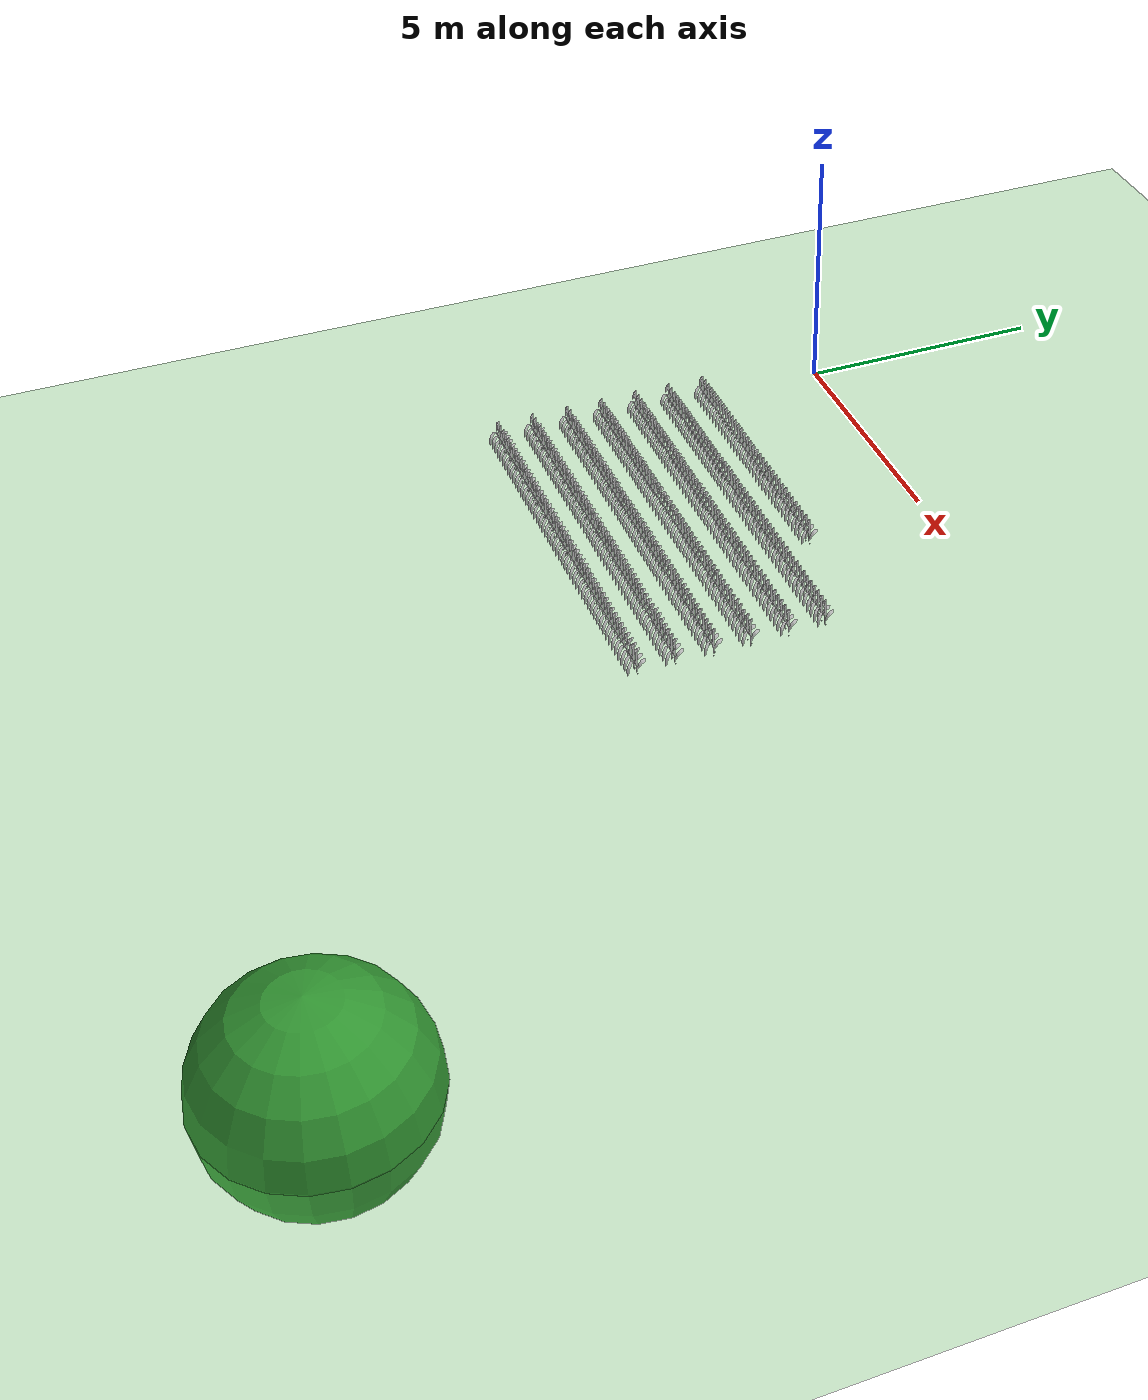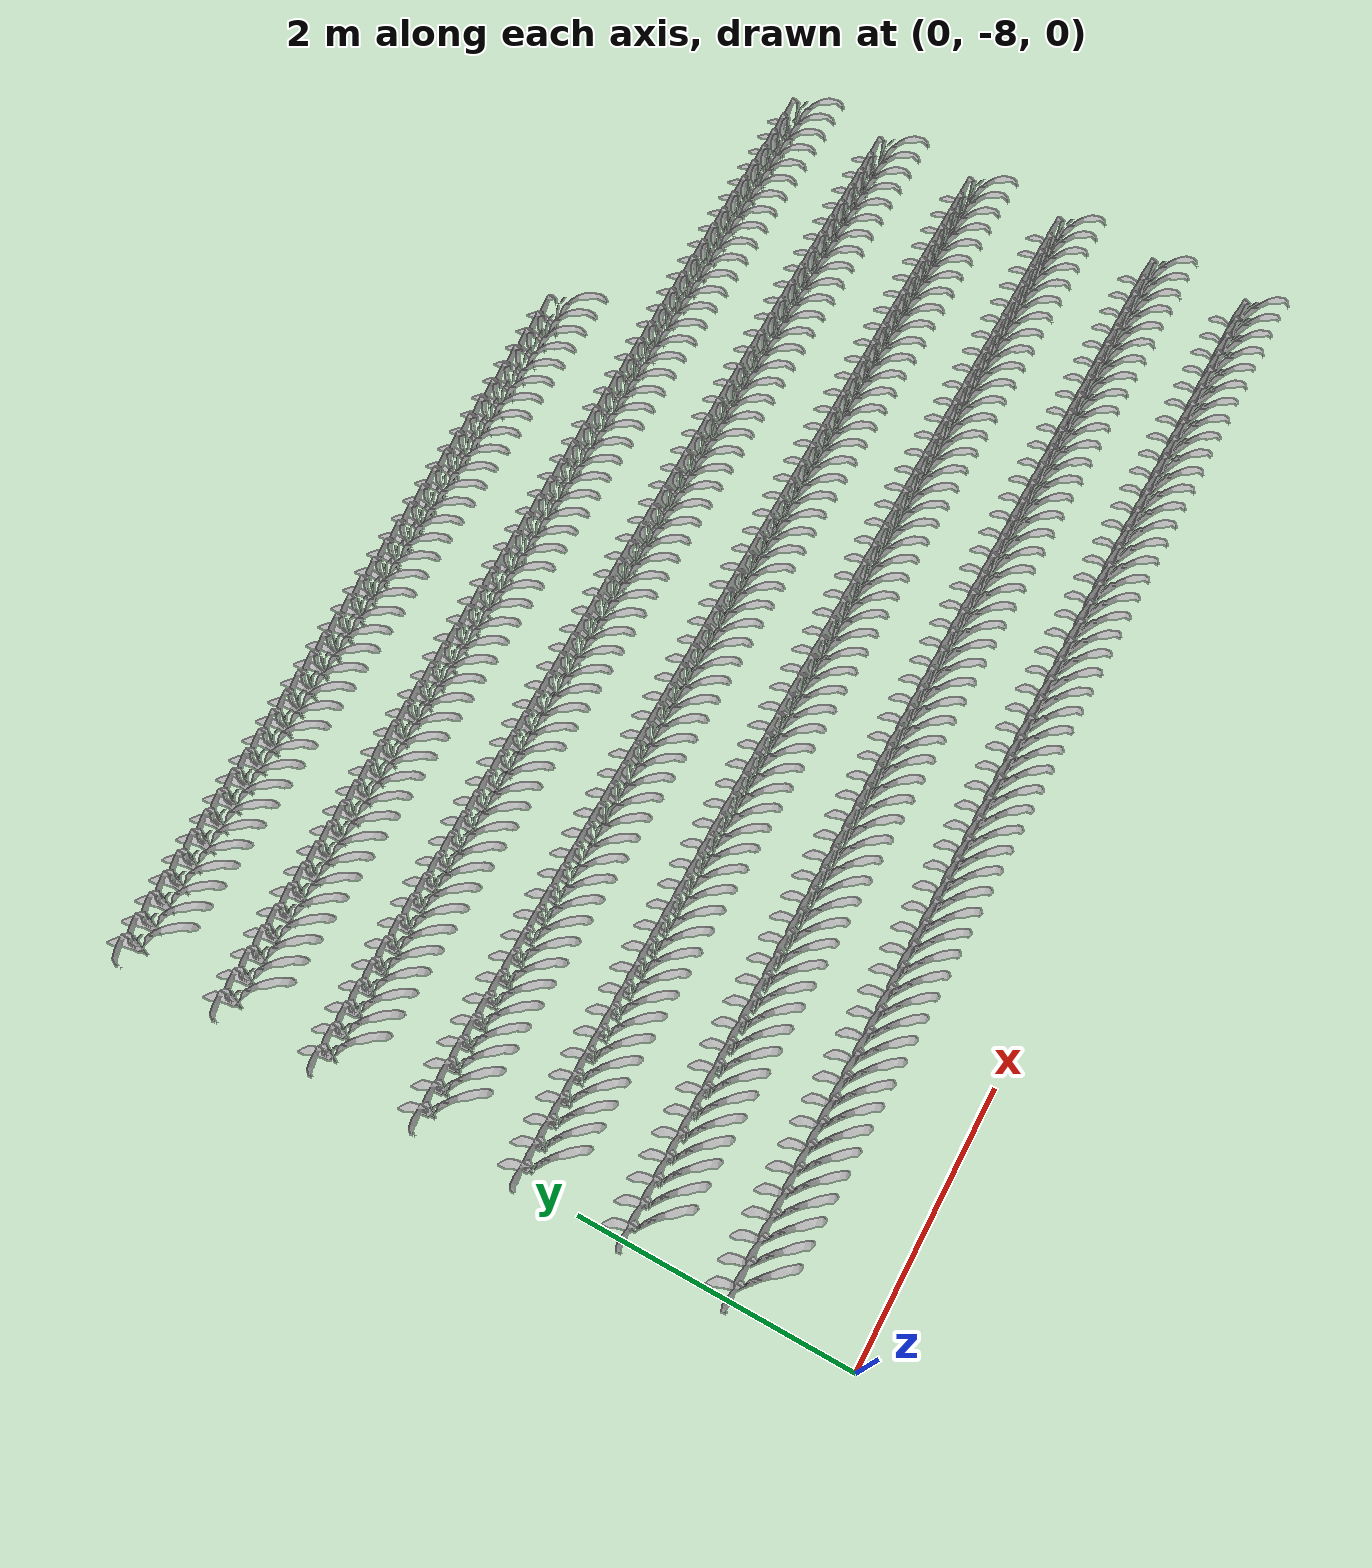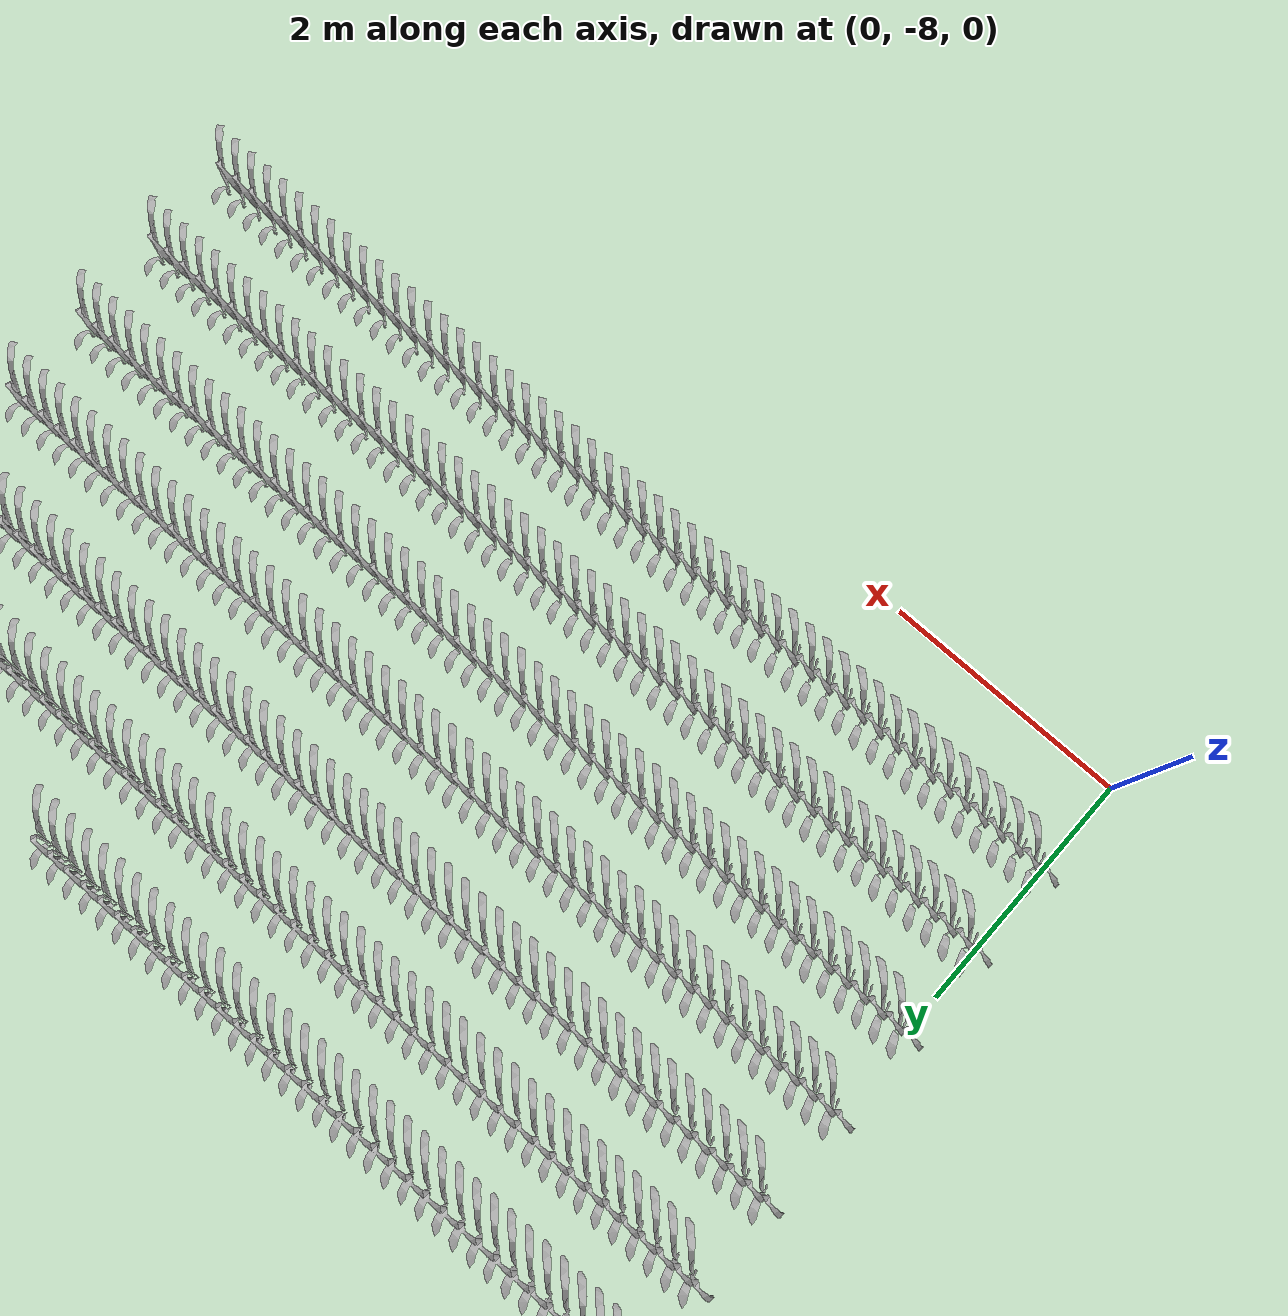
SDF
<sdf version="1.9">
 <world name="farm_world">
  <model name="ground_plane">
   <static>true</static>
   <link name="link">
    <collision name="collision">
     <geometry><plane><normal>0 0 1</normal><size>100 100</size></plane></geometry>
    </collision>
    <visual name="visual">
     <geometry><plane><normal>0 0 1</normal><size>100 100</size></plane></geometry>
     <material>
      <ambient>0.2 0.6 0.2 1</ambient>
      <diffuse>0.3 0.7 0.3 1</diffuse>
      <specular>0.1 0.1 0.1 1</specular>
     </material>
    </visual>
   </link>
  </model>
  <include><uri>model://maize_01</uri><name>maize_50</name><pose>0.08 -7.12 0 0 0 0</pose></include>
  <include><uri>model://maize_01</uri><name>maize_51</name><pose>0.24 -7.12 0 0 0 0</pose></include>
  <include><uri>model://maize_01</uri><name>maize_52</name><pose>0.40 -7.12 0 0 0 0</pose></include>
  <include><uri>model://maize_01</uri><name>maize_53</name><pose>0.56 -7.12 0 0 0 0</pose></include>
  <include><uri>model://maize_01</uri><name>maize_54</name><pose>0.72 -7.12 0 0 0 0</pose></include>
  <include><uri>model://maize_01</uri><name>maize_55</name><pose>0.88 -7.12 0 0 0 0</pose></include>
  <include><uri>model://maize_01</uri><name>maize_56</name><pose>1.04 -7.12 0 0 0 0</pose></include>
  <include><uri>model://maize_01</uri><name>maize_57</name><pose>1.20 -7.12 0 0 0 0</pose></include>
  <include><uri>model://maize_01</uri><name>maize_58</name><pose>1.36 -7.12 0 0 0 0</pose></include>
  <include><uri>model://maize_01</uri><name>maize_59</name><pose>1.52 -7.12 0 0 0 0</pose></include>
  <include><uri>model://maize_01</uri><name>maize_60</name><pose>1.68 -7.12 0 0 0 0</pose></include>
  <include><uri>model://maize_01</uri><name>maize_61</name><pose>1.84 -7.12 0 0 0 0</pose></include>
  <include><uri>model://maize_01</uri><name>maize_62</name><pose>2.00 -7.12 0 0 0 0</pose></include>
  <include><uri>model://maize_01</uri><name>maize_63</name><pose>2.16 -7.12 0 0 0 0</pose></include>
  <include><uri>model://maize_01</uri><name>maize_64</name><pose>2.32 -7.12 0 0 0 0</pose></include>
  <include><uri>model://maize_01</uri><name>maize_65</name><pose>2.48 -7.12 0 0 0 0</pose></include>
  <include><uri>model://maize_01</uri><name>maize_66</name><pose>2.64 -7.12 0 0 0 0</pose></include>
  <include><uri>model://maize_01</uri><name>maize_67</name><pose>2.80 -7.12 0 0 0 0</pose></include>
  <include><uri>model://maize_01</uri><name>maize_68</name><pose>2.96 -7.12 0 0 0 0</pose></include>
  <include><uri>model://maize_01</uri><name>maize_69</name><pose>3.12 -7.12 0 0 0 0</pose></include>
  <include><uri>model://maize_01</uri><name>maize_70</name><pose>3.28 -7.12 0 0 0 0</pose></include>
  <include><uri>model://maize_01</uri><name>maize_71</name><pose>3.44 -7.12 0 0 0 0</pose></include>
  <include><uri>model://maize_01</uri><name>maize_72</name><pose>3.60 -7.12 0 0 0 0</pose></include>
  <include><uri>model://maize_01</uri><name>maize_73</name><pose>3.76 -7.12 0 0 0 0</pose></include>
  <include><uri>model://maize_01</uri><name>maize_74</name><pose>3.92 -7.12 0 0 0 0</pose></include>
  <include><uri>model://maize_01</uri><name>maize_75</name><pose>4.08 -7.12 0 0 0 0</pose></include>
  <include><uri>model://maize_01</uri><name>maize_76</name><pose>4.24 -7.12 0 0 0 0</pose></include>
  <include><uri>model://maize_01</uri><name>maize_77</name><pose>4.40 -7.12 0 0 0 0</pose></include>
  <include><uri>model://maize_01</uri><name>maize_78</name><pose>4.56 -7.12 0 0 0 0</pose></include>
  <include><uri>model://maize_01</uri><name>maize_79</name><pose>4.72 -7.12 0 0 0 0</pose></include>
  <include><uri>model://maize_01</uri><name>maize_80</name><pose>4.88 -7.12 0 0 0 0</pose></include>
  <include><uri>model://maize_01</uri><name>maize_81</name><pose>5.04 -7.12 0 0 0 0</pose></include>
  <include><uri>model://maize_01</uri><name>maize_82</name><pose>5.20 -7.12 0 0 0 0</pose></include>
  <include><uri>model://maize_01</uri><name>maize_83</name><pose>5.36 -7.12 0 0 0 0</pose></include>
  <include><uri>model://maize_01</uri><name>maize_84</name><pose>5.52 -7.12 0 0 0 0</pose></include>
  <include><uri>model://maize_01</uri><name>maize_85</name><pose>5.68 -7.12 0 0 0 0</pose></include>
  <include><uri>model://maize_01</uri><name>maize_86</name><pose>5.84 -7.12 0 0 0 0</pose></include>
  <include><uri>model://maize_01</uri><name>maize_87</name><pose>6.00 -7.12 0 0 0 0</pose></include>
  <include><uri>model://maize_01</uri><name>maize_88</name><pose>6.16 -7.12 0 0 0 0</pose></include>
  <include><uri>model://maize_01</uri><name>maize_89</name><pose>6.32 -7.12 0 0 0 0</pose></include>
  <include><uri>model://maize_01</uri><name>maize_90</name><pose>6.48 -7.12 0 0 0 0</pose></include>
  <include><uri>model://maize_01</uri><name>maize_91</name><pose>6.64 -7.12 0 0 0 0</pose></include>
  <include><uri>model://maize_01</uri><name>maize_92</name><pose>6.80 -7.12 0 0 0 0</pose></include>
  <include><uri>model://maize_01</uri><name>maize_93</name><pose>6.96 -7.12 0 0 0 0</pose></include>
  <include><uri>model://maize_01</uri><name>maize_94</name><pose>7.12 -7.12 0 0 0 0</pose></include>
  <include><uri>model://maize_01</uri><name>maize_95</name><pose>7.28 -7.12 0 0 0 0</pose></include>
  <include><uri>model://maize_01</uri><name>maize_96</name><pose>7.44 -7.12 0 0 0 0</pose></include>
  <include><uri>model://maize_01</uri><name>maize_97</name><pose>7.60 -7.12 0 0 0 0</pose></include>
  <include><uri>model://maize_01</uri><name>maize_98</name><pose>7.76 -7.12 0 0 0 0</pose></include>
  <include><uri>model://maize_01</uri><name>maize_99</name><pose>7.92 -7.12 0 0 0 0</pose></include>
  <include><uri>model://maize_01</uri><name>maize_150</name><pose>0.08 -6.38 0 0 0 0</pose></include>
  <include><uri>model://maize_01</uri><name>maize_151</name><pose>0.24 -6.38 0 0 0 0</pose></include>
  <include><uri>model://maize_01</uri><name>maize_152</name><pose>0.40 -6.38 0 0 0 0</pose></include>
  <include><uri>model://maize_01</uri><name>maize_153</name><pose>0.56 -6.38 0 0 0 0</pose></include>
  <include><uri>model://maize_01</uri><name>maize_154</name><pose>0.72 -6.38 0 0 0 0</pose></include>
  <include><uri>model://maize_01</uri><name>maize_155</name><pose>0.88 -6.38 0 0 0 0</pose></include>
  <include><uri>model://maize_01</uri><name>maize_156</name><pose>1.04 -6.38 0 0 0 0</pose></include>
  <include><uri>model://maize_01</uri><name>maize_157</name><pose>1.20 -6.38 0 0 0 0</pose></include>
  <include><uri>model://maize_01</uri><name>maize_158</name><pose>1.36 -6.38 0 0 0 0</pose></include>
  <include><uri>model://maize_01</uri><name>maize_159</name><pose>1.52 -6.38 0 0 0 0</pose></include>
  <include><uri>model://maize_01</uri><name>maize_160</name><pose>1.68 -6.38 0 0 0 0</pose></include>
  <include><uri>model://maize_01</uri><name>maize_161</name><pose>1.84 -6.38 0 0 0 0</pose></include>
  <include><uri>model://maize_01</uri><name>maize_162</name><pose>2.00 -6.38 0 0 0 0</pose></include>
  <include><uri>model://maize_01</uri><name>maize_163</name><pose>2.16 -6.38 0 0 0 0</pose></include>
  <include><uri>model://maize_01</uri><name>maize_164</name><pose>2.32 -6.38 0 0 0 0</pose></include>
  <include><uri>model://maize_01</uri><name>maize_165</name><pose>2.48 -6.38 0 0 0 0</pose></include>
  <include><uri>model://maize_01</uri><name>maize_166</name><pose>2.64 -6.38 0 0 0 0</pose></include>
  <include><uri>model://maize_01</uri><name>maize_167</name><pose>2.80 -6.38 0 0 0 0</pose></include>
  <include><uri>model://maize_01</uri><name>maize_168</name><pose>2.96 -6.38 0 0 0 0</pose></include>
  <include><uri>model://maize_01</uri><name>maize_169</name><pose>3.12 -6.38 0 0 0 0</pose></include>
  <include><uri>model://maize_01</uri><name>maize_170</name><pose>3.28 -6.38 0 0 0 0</pose></include>
  <include><uri>model://maize_01</uri><name>maize_171</name><pose>3.44 -6.38 0 0 0 0</pose></include>
  <include><uri>model://maize_01</uri><name>maize_172</name><pose>3.60 -6.38 0 0 0 0</pose></include>
  <include><uri>model://maize_01</uri><name>maize_173</name><pose>3.76 -6.38 0 0 0 0</pose></include>
  <include><uri>model://maize_01</uri><name>maize_174</name><pose>3.92 -6.38 0 0 0 0</pose></include>
  <include><uri>model://maize_01</uri><name>maize_175</name><pose>4.08 -6.38 0 0 0 0</pose></include>
  <include><uri>model://maize_01</uri><name>maize_176</name><pose>4.24 -6.38 0 0 0 0</pose></include>
  <include><uri>model://maize_01</uri><name>maize_177</name><pose>4.40 -6.38 0 0 0 0</pose></include>
  <include><uri>model://maize_01</uri><name>maize_178</name><pose>4.56 -6.38 0 0 0 0</pose></include>
  <include><uri>model://maize_01</uri><name>maize_179</name><pose>4.72 -6.38 0 0 0 0</pose></include>
  <include><uri>model://maize_01</uri><name>maize_180</name><pose>4.88 -6.38 0 0 0 0</pose></include>
  <include><uri>model://maize_01</uri><name>maize_181</name><pose>5.04 -6.38 0 0 0 0</pose></include>
  <include><uri>model://maize_01</uri><name>maize_182</name><pose>5.20 -6.38 0 0 0 0</pose></include>
  <include><uri>model://maize_01</uri><name>maize_183</name><pose>5.36 -6.38 0 0 0 0</pose></include>
  <include><uri>model://maize_01</uri><name>maize_184</name><pose>5.52 -6.38 0 0 0 0</pose></include>
  <include><uri>model://maize_01</uri><name>maize_185</name><pose>5.68 -6.38 0 0 0 0</pose></include>
  <include><uri>model://maize_01</uri><name>maize_186</name><pose>5.84 -6.38 0 0 0 0</pose></include>
  <include><uri>model://maize_01</uri><name>maize_187</name><pose>6.00 -6.38 0 0 0 0</pose></include>
  <include><uri>model://maize_01</uri><name>maize_188</name><pose>6.16 -6.38 0 0 0 0</pose></include>
  <include><uri>model://maize_01</uri><name>maize_189</name><pose>6.32 -6.38 0 0 0 0</pose></include>
  <include><uri>model://maize_01</uri><name>maize_190</name><pose>6.48 -6.38 0 0 0 0</pose></include>
  <include><uri>model://maize_01</uri><name>maize_191</name><pose>6.64 -6.38 0 0 0 0</pose></include>
  <include><uri>model://maize_01</uri><name>maize_192</name><pose>6.80 -6.38 0 0 0 0</pose></include>
  <include><uri>model://maize_01</uri><name>maize_193</name><pose>6.96 -6.38 0 0 0 0</pose></include>
  <include><uri>model://maize_01</uri><name>maize_194</name><pose>7.12 -6.38 0 0 0 0</pose></include>
  <include><uri>model://maize_01</uri><name>maize_195</name><pose>7.28 -6.38 0 0 0 0</pose></include>
  <include><uri>model://maize_01</uri><name>maize_196</name><pose>7.44 -6.38 0 0 0 0</pose></include>
  <include><uri>model://maize_01</uri><name>maize_197</name><pose>7.60 -6.38 0 0 0 0</pose></include>
  <include><uri>model://maize_01</uri><name>maize_198</name><pose>7.76 -6.38 0 0 0 0</pose></include>
  <include><uri>model://maize_01</uri><name>maize_199</name><pose>7.92 -6.38 0 0 0 0</pose></include>
  <include><uri>model://maize_01</uri><name>maize_250</name><pose>0.08 -5.62 0 0 0 0</pose></include>
  <include><uri>model://maize_01</uri><name>maize_251</name><pose>0.24 -5.62 0 0 0 0</pose></include>
  <include><uri>model://maize_01</uri><name>maize_252</name><pose>0.40 -5.62 0 0 0 0</pose></include>
  <include><uri>model://maize_01</uri><name>maize_253</name><pose>0.56 -5.62 0 0 0 0</pose></include>
  <include><uri>model://maize_01</uri><name>maize_254</name><pose>0.72 -5.62 0 0 0 0</pose></include>
  <include><uri>model://maize_01</uri><name>maize_255</name><pose>0.88 -5.62 0 0 0 0</pose></include>
  <include><uri>model://maize_01</uri><name>maize_256</name><pose>1.04 -5.62 0 0 0 0</pose></include>
  <include><uri>model://maize_01</uri><name>maize_257</name><pose>1.20 -5.62 0 0 0 0</pose></include>
  <include><uri>model://maize_01</uri><name>maize_258</name><pose>1.36 -5.62 0 0 0 0</pose></include>
  <include><uri>model://maize_01</uri><name>maize_259</name><pose>1.52 -5.62 0 0 0 0</pose></include>
  <include><uri>model://maize_01</uri><name>maize_260</name><pose>1.68 -5.62 0 0 0 0</pose></include>
  <include><uri>model://maize_01</uri><name>maize_261</name><pose>1.84 -5.62 0 0 0 0</pose></include>
  <include><uri>model://maize_01</uri><name>maize_262</name><pose>2.00 -5.62 0 0 0 0</pose></include>
  <include><uri>model://maize_01</uri><name>maize_263</name><pose>2.16 -5.62 0 0 0 0</pose></include>
  <include><uri>model://maize_01</uri><name>maize_264</name><pose>2.32 -5.62 0 0 0 0</pose></include>
  <include><uri>model://maize_01</uri><name>maize_265</name><pose>2.48 -5.62 0 0 0 0</pose></include>
  <include><uri>model://maize_01</uri><name>maize_266</name><pose>2.64 -5.62 0 0 0 0</pose></include>
  <include><uri>model://maize_01</uri><name>maize_267</name><pose>2.80 -5.62 0 0 0 0</pose></include>
  <include><uri>model://maize_01</uri><name>maize_268</name><pose>2.96 -5.62 0 0 0 0</pose></include>
  <include><uri>model://maize_01</uri><name>maize_269</name><pose>3.12 -5.62 0 0 0 0</pose></include>
  <include><uri>model://maize_01</uri><name>maize_270</name><pose>3.28 -5.62 0 0 0 0</pose></include>
  <include><uri>model://maize_01</uri><name>maize_271</name><pose>3.44 -5.62 0 0 0 0</pose></include>
  <include><uri>model://maize_01</uri><name>maize_272</name><pose>3.60 -5.62 0 0 0 0</pose></include>
  <include><uri>model://maize_01</uri><name>maize_273</name><pose>3.76 -5.62 0 0 0 0</pose></include>
  <include><uri>model://maize_01</uri><name>maize_274</name><pose>3.92 -5.62 0 0 0 0</pose></include>
  <include><uri>model://maize_01</uri><name>maize_275</name><pose>4.08 -5.62 0 0 0 0</pose></include>
  <include><uri>model://maize_01</uri><name>maize_276</name><pose>4.24 -5.62 0 0 0 0</pose></include>
  <include><uri>model://maize_01</uri><name>maize_277</name><pose>4.40 -5.62 0 0 0 0</pose></include>
  <include><uri>model://maize_01</uri><name>maize_278</name><pose>4.56 -5.62 0 0 0 0</pose></include>
  <include><uri>model://maize_01</uri><name>maize_279</name><pose>4.72 -5.62 0 0 0 0</pose></include>
  <include><uri>model://maize_01</uri><name>maize_280</name><pose>4.88 -5.62 0 0 0 0</pose></include>
  <include><uri>model://maize_01</uri><name>maize_281</name><pose>5.04 -5.62 0 0 0 0</pose></include>
  <include><uri>model://maize_01</uri><name>maize_282</name><pose>5.20 -5.62 0 0 0 0</pose></include>
  <include><uri>model://maize_01</uri><name>maize_283</name><pose>5.36 -5.62 0 0 0 0</pose></include>
  <include><uri>model://maize_01</uri><name>maize_284</name><pose>5.52 -5.62 0 0 0 0</pose></include>
  <include><uri>model://maize_01</uri><name>maize_285</name><pose>5.68 -5.62 0 0 0 0</pose></include>
  <include><uri>model://maize_01</uri><name>maize_286</name><pose>5.84 -5.62 0 0 0 0</pose></include>
  <include><uri>model://maize_01</uri><name>maize_287</name><pose>6.00 -5.62 0 0 0 0</pose></include>
  <include><uri>model://maize_01</uri><name>maize_288</name><pose>6.16 -5.62 0 0 0 0</pose></include>
  <include><uri>model://maize_01</uri><name>maize_289</name><pose>6.32 -5.62 0 0 0 0</pose></include>
  <include><uri>model://maize_01</uri><name>maize_290</name><pose>6.48 -5.62 0 0 0 0</pose></include>
  <include><uri>model://maize_01</uri><name>maize_291</name><pose>6.64 -5.62 0 0 0 0</pose></include>
  <include><uri>model://maize_01</uri><name>maize_292</name><pose>6.80 -5.62 0 0 0 0</pose></include>
  <include><uri>model://maize_01</uri><name>maize_293</name><pose>6.96 -5.62 0 0 0 0</pose></include>
  <include><uri>model://maize_01</uri><name>maize_294</name><pose>7.12 -5.62 0 0 0 0</pose></include>
  <include><uri>model://maize_01</uri><name>maize_295</name><pose>7.28 -5.62 0 0 0 0</pose></include>
  <include><uri>model://maize_01</uri><name>maize_296</name><pose>7.44 -5.62 0 0 0 0</pose></include>
  <include><uri>model://maize_01</uri><name>maize_297</name><pose>7.60 -5.62 0 0 0 0</pose></include>
  <include><uri>model://maize_01</uri><name>maize_298</name><pose>7.76 -5.62 0 0 0 0</pose></include>
  <include><uri>model://maize_01</uri><name>maize_299</name><pose>7.92 -5.62 0 0 0 0</pose></include>
  <include><uri>model://maize_01</uri><name>maize_350</name><pose>0.08 -4.88 0 0 0 0</pose></include>
  <include><uri>model://maize_01</uri><name>maize_351</name><pose>0.24 -4.88 0 0 0 0</pose></include>
  <include><uri>model://maize_01</uri><name>maize_352</name><pose>0.40 -4.88 0 0 0 0</pose></include>
  <include><uri>model://maize_01</uri><name>maize_353</name><pose>0.56 -4.88 0 0 0 0</pose></include>
  <include><uri>model://maize_01</uri><name>maize_354</name><pose>0.72 -4.88 0 0 0 0</pose></include>
  <include><uri>model://maize_01</uri><name>maize_355</name><pose>0.88 -4.88 0 0 0 0</pose></include>
  <include><uri>model://maize_01</uri><name>maize_356</name><pose>1.04 -4.88 0 0 0 0</pose></include>
  <include><uri>model://maize_01</uri><name>maize_357</name><pose>1.20 -4.88 0 0 0 0</pose></include>
  <include><uri>model://maize_01</uri><name>maize_358</name><pose>1.36 -4.88 0 0 0 0</pose></include>
  <include><uri>model://maize_01</uri><name>maize_359</name><pose>1.52 -4.88 0 0 0 0</pose></include>
  <include><uri>model://maize_01</uri><name>maize_360</name><pose>1.68 -4.88 0 0 0 0</pose></include>
  <include><uri>model://maize_01</uri><name>maize_361</name><pose>1.84 -4.88 0 0 0 0</pose></include>
  <include><uri>model://maize_01</uri><name>maize_362</name><pose>2.00 -4.88 0 0 0 0</pose></include>
  <include><uri>model://maize_01</uri><name>maize_363</name><pose>2.16 -4.88 0 0 0 0</pose></include>
  <include><uri>model://maize_01</uri><name>maize_364</name><pose>2.32 -4.88 0 0 0 0</pose></include>
  <include><uri>model://maize_01</uri><name>maize_365</name><pose>2.48 -4.88 0 0 0 0</pose></include>
  <include><uri>model://maize_01</uri><name>maize_366</name><pose>2.64 -4.88 0 0 0 0</pose></include>
  <include><uri>model://maize_01</uri><name>maize_367</name><pose>2.80 -4.88 0 0 0 0</pose></include>
  <include><uri>model://maize_01</uri><name>maize_368</name><pose>2.96 -4.88 0 0 0 0</pose></include>
  <include><uri>model://maize_01</uri><name>maize_369</name><pose>3.12 -4.88 0 0 0 0</pose></include>
  <include><uri>model://maize_01</uri><name>maize_370</name><pose>3.28 -4.88 0 0 0 0</pose></include>
  <include><uri>model://maize_01</uri><name>maize_371</name><pose>3.44 -4.88 0 0 0 0</pose></include>
  <include><uri>model://maize_01</uri><name>maize_372</name><pose>3.60 -4.88 0 0 0 0</pose></include>
  <include><uri>model://maize_01</uri><name>maize_373</name><pose>3.76 -4.88 0 0 0 0</pose></include>
  <include><uri>model://maize_01</uri><name>maize_374</name><pose>3.92 -4.88 0 0 0 0</pose></include>
  <include><uri>model://maize_01</uri><name>maize_375</name><pose>4.08 -4.88 0 0 0 0</pose></include>
  <include><uri>model://maize_01</uri><name>maize_376</name><pose>4.24 -4.88 0 0 0 0</pose></include>
  <include><uri>model://maize_01</uri><name>maize_377</name><pose>4.40 -4.88 0 0 0 0</pose></include>
  <include><uri>model://maize_01</uri><name>maize_378</name><pose>4.56 -4.88 0 0 0 0</pose></include>
  <include><uri>model://maize_01</uri><name>maize_379</name><pose>4.72 -4.88 0 0 0 0</pose></include>
  <include><uri>model://maize_01</uri><name>maize_380</name><pose>4.88 -4.88 0 0 0 0</pose></include>
  <include><uri>model://maize_01</uri><name>maize_381</name><pose>5.04 -4.88 0 0 0 0</pose></include>
  <include><uri>model://maize_01</uri><name>maize_382</name><pose>5.20 -4.88 0 0 0 0</pose></include>
  <include><uri>model://maize_01</uri><name>maize_383</name><pose>5.36 -4.88 0 0 0 0</pose></include>
  <include><uri>model://maize_01</uri><name>maize_384</name><pose>5.52 -4.88 0 0 0 0</pose></include>
  <include><uri>model://maize_01</uri><name>maize_385</name><pose>5.68 -4.88 0 0 0 0</pose></include>
  <include><uri>model://maize_01</uri><name>maize_386</name><pose>5.84 -4.88 0 0 0 0</pose></include>
  <include><uri>model://maize_01</uri><name>maize_387</name><pose>6.00 -4.88 0 0 0 0</pose></include>
  <include><uri>model://maize_01</uri><name>maize_388</name><pose>6.16 -4.88 0 0 0 0</pose></include>
  <include><uri>model://maize_01</uri><name>maize_389</name><pose>6.32 -4.88 0 0 0 0</pose></include>
  <include><uri>model://maize_01</uri><name>maize_390</name><pose>6.48 -4.88 0 0 0 0</pose></include>
  <include><uri>model://maize_01</uri><name>maize_391</name><pose>6.64 -4.88 0 0 0 0</pose></include>
  <include><uri>model://maize_01</uri><name>maize_392</name><pose>6.80 -4.88 0 0 0 0</pose></include>
  <include><uri>model://maize_01</uri><name>maize_393</name><pose>6.96 -4.88 0 0 0 0</pose></include>
  <include><uri>model://maize_01</uri><name>maize_394</name><pose>7.12 -4.88 0 0 0 0</pose></include>
  <include><uri>model://maize_01</uri><name>maize_395</name><pose>7.28 -4.88 0 0 0 0</pose></include>
  <include><uri>model://maize_01</uri><name>maize_396</name><pose>7.44 -4.88 0 0 0 0</pose></include>
  <include><uri>model://maize_01</uri><name>maize_397</name><pose>7.60 -4.88 0 0 0 0</pose></include>
  <include><uri>model://maize_01</uri><name>maize_398</name><pose>7.76 -4.88 0 0 0 0</pose></include>
  <include><uri>model://maize_01</uri><name>maize_399</name><pose>7.92 -4.88 0 0 0 0</pose></include>
  <include><uri>model://maize_01</uri><name>maize_450</name><pose>0.08 -4.12 0 0 0 0</pose></include>
  <include><uri>model://maize_01</uri><name>maize_451</name><pose>0.24 -4.12 0 0 0 0</pose></include>
  <include><uri>model://maize_01</uri><name>maize_452</name><pose>0.40 -4.12 0 0 0 0</pose></include>
  <include><uri>model://maize_01</uri><name>maize_453</name><pose>0.56 -4.12 0 0 0 0</pose></include>
  <include><uri>model://maize_01</uri><name>maize_454</name><pose>0.72 -4.12 0 0 0 0</pose></include>
  <include><uri>model://maize_01</uri><name>maize_455</name><pose>0.88 -4.12 0 0 0 0</pose></include>
  <include><uri>model://maize_01</uri><name>maize_456</name><pose>1.04 -4.12 0 0 0 0</pose></include>
  <include><uri>model://maize_01</uri><name>maize_457</name><pose>1.20 -4.12 0 0 0 0</pose></include>
  <include><uri>model://maize_01</uri><name>maize_458</name><pose>1.36 -4.12 0 0 0 0</pose></include>
  <include><uri>model://maize_01</uri><name>maize_459</name><pose>1.52 -4.12 0 0 0 0</pose></include>
  <include><uri>model://maize_01</uri><name>maize_460</name><pose>1.68 -4.12 0 0 0 0</pose></include>
  <include><uri>model://maize_01</uri><name>maize_461</name><pose>1.84 -4.12 0 0 0 0</pose></include>
  <include><uri>model://maize_01</uri><name>maize_462</name><pose>2.00 -4.12 0 0 0 0</pose></include>
  <include><uri>model://maize_01</uri><name>maize_463</name><pose>2.16 -4.12 0 0 0 0</pose></include>
  <include><uri>model://maize_01</uri><name>maize_464</name><pose>2.32 -4.12 0 0 0 0</pose></include>
  <include><uri>model://maize_01</uri><name>maize_465</name><pose>2.48 -4.12 0 0 0 0</pose></include>
  <include><uri>model://maize_01</uri><name>maize_466</name><pose>2.64 -4.12 0 0 0 0</pose></include>
  <include><uri>model://maize_01</uri><name>maize_467</name><pose>2.80 -4.12 0 0 0 0</pose></include>
  <include><uri>model://maize_01</uri><name>maize_468</name><pose>2.96 -4.12 0 0 0 0</pose></include>
  <include><uri>model://maize_01</uri><name>maize_469</name><pose>3.12 -4.12 0 0 0 0</pose></include>
  <include><uri>model://maize_01</uri><name>maize_470</name><pose>3.28 -4.12 0 0 0 0</pose></include>
  <include><uri>model://maize_01</uri><name>maize_471</name><pose>3.44 -4.12 0 0 0 0</pose></include>
  <include><uri>model://maize_01</uri><name>maize_472</name><pose>3.60 -4.12 0 0 0 0</pose></include>
  <include><uri>model://maize_01</uri><name>maize_473</name><pose>3.76 -4.12 0 0 0 0</pose></include>
  <include><uri>model://maize_01</uri><name>maize_474</name><pose>3.92 -4.12 0 0 0 0</pose></include>
  <include><uri>model://maize_01</uri><name>maize_475</name><pose>4.08 -4.12 0 0 0 0</pose></include>
  <include><uri>model://maize_01</uri><name>maize_476</name><pose>4.24 -4.12 0 0 0 0</pose></include>
  <include><uri>model://maize_01</uri><name>maize_477</name><pose>4.40 -4.12 0 0 0 0</pose></include>
  <include><uri>model://maize_01</uri><name>maize_478</name><pose>4.56 -4.12 0 0 0 0</pose></include>
  <include><uri>model://maize_01</uri><name>maize_479</name><pose>4.72 -4.12 0 0 0 0</pose></include>
  <include><uri>model://maize_01</uri><name>maize_480</name><pose>4.88 -4.12 0 0 0 0</pose></include>
  <include><uri>model://maize_01</uri><name>maize_481</name><pose>5.04 -4.12 0 0 0 0</pose></include>
  <include><uri>model://maize_01</uri><name>maize_482</name><pose>5.20 -4.12 0 0 0 0</pose></include>
  <include><uri>model://maize_01</uri><name>maize_483</name><pose>5.36 -4.12 0 0 0 0</pose></include>
  <include><uri>model://maize_01</uri><name>maize_484</name><pose>5.52 -4.12 0 0 0 0</pose></include>
  <include><uri>model://maize_01</uri><name>maize_485</name><pose>5.68 -4.12 0 0 0 0</pose></include>
  <include><uri>model://maize_01</uri><name>maize_486</name><pose>5.84 -4.12 0 0 0 0</pose></include>
  <include><uri>model://maize_01</uri><name>maize_487</name><pose>6.00 -4.12 0 0 0 0</pose></include>
  <include><uri>model://maize_01</uri><name>maize_488</name><pose>6.16 -4.12 0 0 0 0</pose></include>
  <include><uri>model://maize_01</uri><name>maize_489</name><pose>6.32 -4.12 0 0 0 0</pose></include>
  <include><uri>model://maize_01</uri><name>maize_490</name><pose>6.48 -4.12 0 0 0 0</pose></include>
  <include><uri>model://maize_01</uri><name>maize_491</name><pose>6.64 -4.12 0 0 0 0</pose></include>
  <include><uri>model://maize_01</uri><name>maize_492</name><pose>6.80 -4.12 0 0 0 0</pose></include>
  <include><uri>model://maize_01</uri><name>maize_493</name><pose>6.96 -4.12 0 0 0 0</pose></include>
  <include><uri>model://maize_01</uri><name>maize_494</name><pose>7.12 -4.12 0 0 0 0</pose></include>
  <include><uri>model://maize_01</uri><name>maize_495</name><pose>7.28 -4.12 0 0 0 0</pose></include>
  <include><uri>model://maize_01</uri><name>maize_496</name><pose>7.44 -4.12 0 0 0 0</pose></include>
  <include><uri>model://maize_01</uri><name>maize_497</name><pose>7.60 -4.12 0 0 0 0</pose></include>
  <include><uri>model://maize_01</uri><name>maize_498</name><pose>7.76 -4.12 0 0 0 0</pose></include>
  <include><uri>model://maize_01</uri><name>maize_499</name><pose>7.92 -4.12 0 0 0 0</pose></include>
  <include><uri>model://maize_01</uri><name>maize_550</name><pose>0.08 -3.38 0 0 0 0</pose></include>
  <include><uri>model://maize_01</uri><name>maize_551</name><pose>0.24 -3.38 0 0 0 0</pose></include>
  <include><uri>model://maize_01</uri><name>maize_552</name><pose>0.40 -3.38 0 0 0 0</pose></include>
  <include><uri>model://maize_01</uri><name>maize_553</name><pose>0.56 -3.38 0 0 0 0</pose></include>
  <include><uri>model://maize_01</uri><name>maize_554</name><pose>0.72 -3.38 0 0 0 0</pose></include>
  <include><uri>model://maize_01</uri><name>maize_555</name><pose>0.88 -3.38 0 0 0 0</pose></include>
  <include><uri>model://maize_01</uri><name>maize_556</name><pose>1.04 -3.38 0 0 0 0</pose></include>
  <include><uri>model://maize_01</uri><name>maize_557</name><pose>1.20 -3.38 0 0 0 0</pose></include>
  <include><uri>model://maize_01</uri><name>maize_558</name><pose>1.36 -3.38 0 0 0 0</pose></include>
  <include><uri>model://maize_01</uri><name>maize_559</name><pose>1.52 -3.38 0 0 0 0</pose></include>
  <include><uri>model://maize_01</uri><name>maize_560</name><pose>1.68 -3.38 0 0 0 0</pose></include>
  <include><uri>model://maize_01</uri><name>maize_561</name><pose>1.84 -3.38 0 0 0 0</pose></include>
  <include><uri>model://maize_01</uri><name>maize_562</name><pose>2.00 -3.38 0 0 0 0</pose></include>
  <include><uri>model://maize_01</uri><name>maize_563</name><pose>2.16 -3.38 0 0 0 0</pose></include>
  <include><uri>model://maize_01</uri><name>maize_564</name><pose>2.32 -3.38 0 0 0 0</pose></include>
  <include><uri>model://maize_01</uri><name>maize_565</name><pose>2.48 -3.38 0 0 0 0</pose></include>
  <include><uri>model://maize_01</uri><name>maize_566</name><pose>2.64 -3.38 0 0 0 0</pose></include>
  <include><uri>model://maize_01</uri><name>maize_567</name><pose>2.80 -3.38 0 0 0 0</pose></include>
  <include><uri>model://maize_01</uri><name>maize_568</name><pose>2.96 -3.38 0 0 0 0</pose></include>
  <include><uri>model://maize_01</uri><name>maize_569</name><pose>3.12 -3.38 0 0 0 0</pose></include>
  <include><uri>model://maize_01</uri><name>maize_570</name><pose>3.28 -3.38 0 0 0 0</pose></include>
  <include><uri>model://maize_01</uri><name>maize_571</name><pose>3.44 -3.38 0 0 0 0</pose></include>
  <include><uri>model://maize_01</uri><name>maize_572</name><pose>3.60 -3.38 0 0 0 0</pose></include>
  <include><uri>model://maize_01</uri><name>maize_573</name><pose>3.76 -3.38 0 0 0 0</pose></include>
  <include><uri>model://maize_01</uri><name>maize_574</name><pose>3.92 -3.38 0 0 0 0</pose></include>
  <include><uri>model://maize_01</uri><name>maize_575</name><pose>4.08 -3.38 0 0 0 0</pose></include>
  <include><uri>model://maize_01</uri><name>maize_576</name><pose>4.24 -3.38 0 0 0 0</pose></include>
  <include><uri>model://maize_01</uri><name>maize_577</name><pose>4.40 -3.38 0 0 0 0</pose></include>
  <include><uri>model://maize_01</uri><name>maize_578</name><pose>4.56 -3.38 0 0 0 0</pose></include>
  <include><uri>model://maize_01</uri><name>maize_579</name><pose>4.72 -3.38 0 0 0 0</pose></include>
  <include><uri>model://maize_01</uri><name>maize_580</name><pose>4.88 -3.38 0 0 0 0</pose></include>
  <include><uri>model://maize_01</uri><name>maize_581</name><pose>5.04 -3.38 0 0 0 0</pose></include>
  <include><uri>model://maize_01</uri><name>maize_582</name><pose>5.20 -3.38 0 0 0 0</pose></include>
  <include><uri>model://maize_01</uri><name>maize_583</name><pose>5.36 -3.38 0 0 0 0</pose></include>
  <include><uri>model://maize_01</uri><name>maize_584</name><pose>5.52 -3.38 0 0 0 0</pose></include>
  <include><uri>model://maize_01</uri><name>maize_585</name><pose>5.68 -3.38 0 0 0 0</pose></include>
  <include><uri>model://maize_01</uri><name>maize_586</name><pose>5.84 -3.38 0 0 0 0</pose></include>
  <include><uri>model://maize_01</uri><name>maize_587</name><pose>6.00 -3.38 0 0 0 0</pose></include>
  <include><uri>model://maize_01</uri><name>maize_588</name><pose>6.16 -3.38 0 0 0 0</pose></include>
  <include><uri>model://maize_01</uri><name>maize_589</name><pose>6.32 -3.38 0 0 0 0</pose></include>
  <include><uri>model://maize_01</uri><name>maize_590</name><pose>6.48 -3.38 0 0 0 0</pose></include>
  <include><uri>model://maize_01</uri><name>maize_591</name><pose>6.64 -3.38 0 0 0 0</pose></include>
  <include><uri>model://maize_01</uri><name>maize_592</name><pose>6.80 -3.38 0 0 0 0</pose></include>
  <include><uri>model://maize_01</uri><name>maize_593</name><pose>6.96 -3.38 0 0 0 0</pose></include>
  <include><uri>model://maize_01</uri><name>maize_594</name><pose>7.12 -3.38 0 0 0 0</pose></include>
  <include><uri>model://maize_01</uri><name>maize_595</name><pose>7.28 -3.38 0 0 0 0</pose></include>
  <include><uri>model://maize_01</uri><name>maize_596</name><pose>7.44 -3.38 0 0 0 0</pose></include>
  <include><uri>model://maize_01</uri><name>maize_597</name><pose>7.60 -3.38 0 0 0 0</pose></include>
  <include><uri>model://maize_01</uri><name>maize_598</name><pose>7.76 -3.38 0 0 0 0</pose></include>
  <include><uri>model://maize_01</uri><name>maize_599</name><pose>7.92 -3.38 0 0 0 0</pose></include>
  <include><uri>model://maize_01</uri><name>maize_650</name><pose>0.08 -2.62 0 0 0 0</pose></include>
  <include><uri>model://maize_01</uri><name>maize_651</name><pose>0.24 -2.62 0 0 0 0</pose></include>
  <include><uri>model://maize_01</uri><name>maize_652</name><pose>0.40 -2.62 0 0 0 0</pose></include>
  <include><uri>model://maize_01</uri><name>maize_653</name><pose>0.56 -2.62 0 0 0 0</pose></include>
  <include><uri>model://maize_01</uri><name>maize_654</name><pose>0.72 -2.62 0 0 0 0</pose></include>
  <include><uri>model://maize_01</uri><name>maize_655</name><pose>0.88 -2.62 0 0 0 0</pose></include>
  <include><uri>model://maize_01</uri><name>maize_656</name><pose>1.04 -2.62 0 0 0 0</pose></include>
  <include><uri>model://maize_01</uri><name>maize_657</name><pose>1.20 -2.62 0 0 0 0</pose></include>
  <include><uri>model://maize_01</uri><name>maize_658</name><pose>1.36 -2.62 0 0 0 0</pose></include>
  <include><uri>model://maize_01</uri><name>maize_659</name><pose>1.52 -2.62 0 0 0 0</pose></include>
  <include><uri>model://maize_01</uri><name>maize_660</name><pose>1.68 -2.62 0 0 0 0</pose></include>
  <include><uri>model://maize_01</uri><name>maize_661</name><pose>1.84 -2.62 0 0 0 0</pose></include>
  <include><uri>model://maize_01</uri><name>maize_662</name><pose>2.00 -2.62 0 0 0 0</pose></include>
  <include><uri>model://maize_01</uri><name>maize_663</name><pose>2.16 -2.62 0 0 0 0</pose></include>
  <include><uri>model://maize_01</uri><name>maize_664</name><pose>2.32 -2.62 0 0 0 0</pose></include>
  <include><uri>model://maize_01</uri><name>maize_665</name><pose>2.48 -2.62 0 0 0 0</pose></include>
  <include><uri>model://maize_01</uri><name>maize_666</name><pose>2.64 -2.62 0 0 0 0</pose></include>
  <include><uri>model://maize_01</uri><name>maize_667</name><pose>2.80 -2.62 0 0 0 0</pose></include>
  <include><uri>model://maize_01</uri><name>maize_668</name><pose>2.96 -2.62 0 0 0 0</pose></include>
  <include><uri>model://maize_01</uri><name>maize_669</name><pose>3.12 -2.62 0 0 0 0</pose></include>
  <include><uri>model://maize_01</uri><name>maize_670</name><pose>3.28 -2.62 0 0 0 0</pose></include>
  <include><uri>model://maize_01</uri><name>maize_671</name><pose>3.44 -2.62 0 0 0 0</pose></include>
  <include><uri>model://maize_01</uri><name>maize_672</name><pose>3.60 -2.62 0 0 0 0</pose></include>
  <include><uri>model://maize_01</uri><name>maize_673</name><pose>3.76 -2.62 0 0 0 0</pose></include>
  <include><uri>model://maize_01</uri><name>maize_674</name><pose>3.92 -2.62 0 0 0 0</pose></include>
  <include><uri>model://maize_01</uri><name>maize_675</name><pose>4.08 -2.62 0 0 0 0</pose></include>
  <include><uri>model://maize_01</uri><name>maize_676</name><pose>4.24 -2.62 0 0 0 0</pose></include>
  <include><uri>model://maize_01</uri><name>maize_677</name><pose>4.40 -2.62 0 0 0 0</pose></include>
  <include><uri>model://maize_01</uri><name>maize_678</name><pose>4.56 -2.62 0 0 0 0</pose></include>
  <include><uri>model://maize_01</uri><name>maize_679</name><pose>4.72 -2.62 0 0 0 0</pose></include>
  <include><uri>model://maize_01</uri><name>maize_680</name><pose>4.88 -2.62 0 0 0 0</pose></include>
  <include><uri>model://maize_01</uri><name>maize_681</name><pose>5.04 -2.62 0 0 0 0</pose></include>
  <include><uri>model://maize_01</uri><name>maize_682</name><pose>5.20 -2.62 0 0 0 0</pose></include>
  <include><uri>model://maize_01</uri><name>maize_683</name><pose>5.36 -2.62 0 0 0 0</pose></include>
  <include><uri>model://maize_01</uri><name>maize_684</name><pose>5.52 -2.62 0 0 0 0</pose></include>
  <include><uri>model://big_tree</uri><name>tree_3</name><pose>15 -15 0 0 0 0</pose></include>
 </world>
</sdf>
